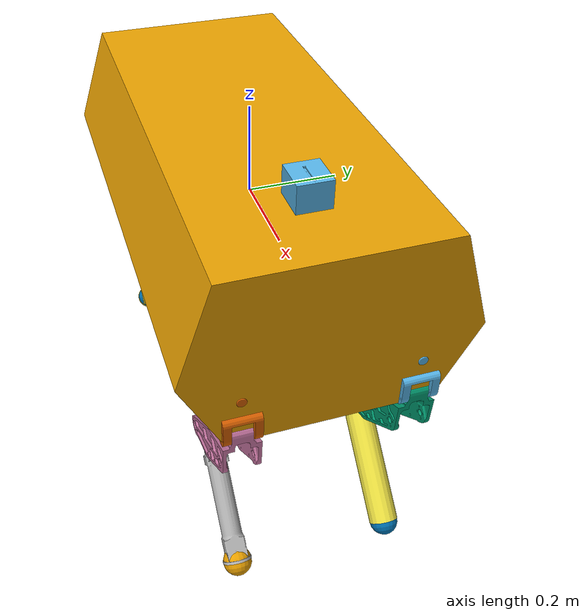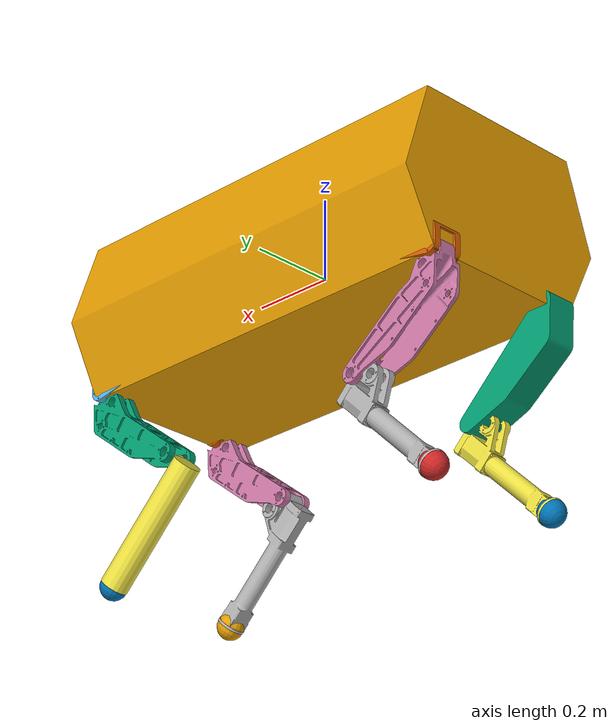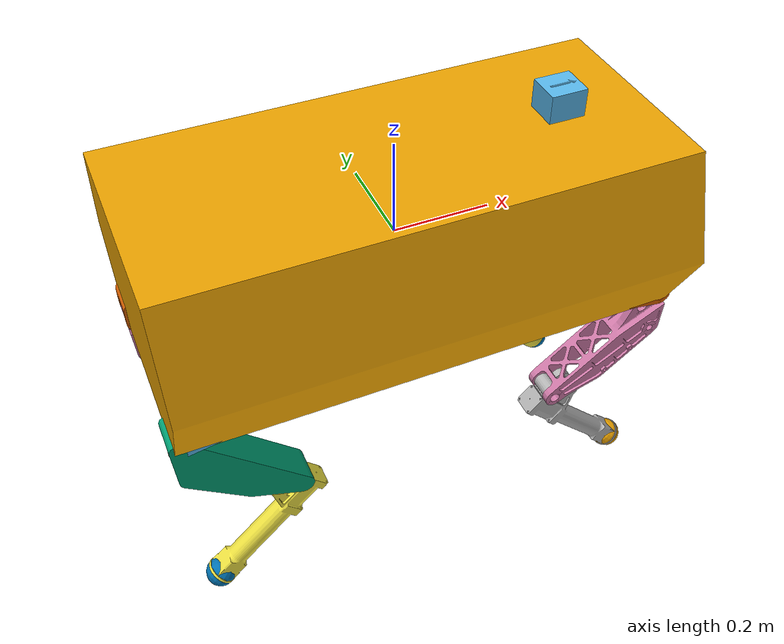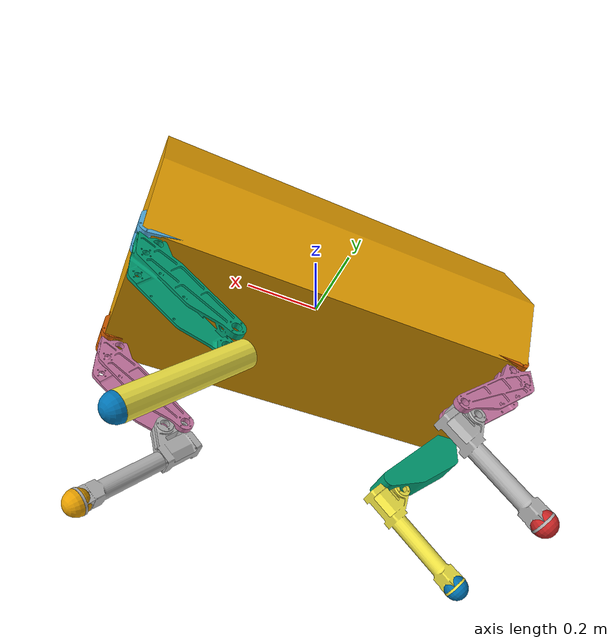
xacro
<?xml version="1.0"?>
<robot xmlns:xacro="http://www.ros.org/wiki/xacro" name="ehbot" >

<!--link and joint configuration-->

    <link name="torsor">
        <inertial>
            <origin xyz="-0.0006103852234427 0.0022287174896614 0.0439870877275536" rpy="0 0 0" />
            <mass   value="91.5850398109959" />
            <inertia
                ixx="3.21847046739878"
                ixy="0.000120950424453411"
                ixz="0.00371240385169517"
                iyy="8.77763016485756"
                iyz="0.00439125064440664"
                izz="9.57066327503177" />
        </inertial>
        <visual>
            <origin xyz="0 0 0" rpy="0 0 0" />
            <geometry>
            <mesh
              filename="package://ros_robotics/meshes/ehbot/visual/torsor.STL" />
            </geometry>
            <material name="ehbot_color"/>
        </visual>
        <collision>
            <origin xyz="0 0 0" rpy="0 0 0" />
            <geometry>
            <mesh
              filename="package://ros_robotics/meshes/ehbot/visual/torsor.STL" />
            </geometry>
        </collision>
    </link>

    <link name="link_lf_leg_thigh_roll">
        <inertial>
            <origin xyz="-0.0943741940341396 -0.00414241783850827 -0.0219639737576229" rpy="0 0 0" />
            <mass   value="4.50002341531795" />
            <inertia
                ixx="0.00982462171332848"
                ixy="-0.00105561145994919"
                ixz="-0.00234857174109823"
                iyy="0.0466176952693577"
                iyz="-0.000981599552383667"
                izz="0.0448674267828951" />
        </inertial>
        <visual>
            <origin xyz="0 0 0" rpy="0 0 0" />
            <geometry>
            <mesh
              filename="package://ros_robotics/meshes/ehbot/visual/link_lf_leg_thigh_roll.STL" />
            </geometry>
            <material name="ehbot_color"/>
        </visual>
        <collision>
            <origin xyz="0 0 0" rpy="0 0 0" />
            <geometry>
            <mesh
              filename="package://ros_robotics/meshes/ehbot/visual/link_lf_leg_thigh_roll.STL" />
            </geometry>
        </collision>
    </link>

    <joint name="joint_lf_leg_thigh_roll" type="revolute">
        <origin  xyz="0.50572 0.175 -0.0920000000000047" rpy="0 0 0" />
        <parent  link="torsor" />
        <child   link="link_lf_leg_thigh_roll" />
        <axis    xyz="1 0 0" />
        <limit
            upper="3.1415926"
            lower="-3.1415926"
            effort="400"
            velocity="10" />
        <dynamics damping="30.0" friction="0.0"/>
    </joint>

    <link name="link_lf_leg_thigh_pitch">
        <inertial>
            <origin xyz="-0.0148914459117169 -6.09817776831001E-08 -0.120580016468622" rpy="0 0 0" />
            <mass   value="4.49994336009306" />
            <inertia
                ixx="0.0466544119236218"
                ixy="-1.10743990761792E-09"
                ixz="-0.00158997011349249"
                iyy="0.0459784407608387"
                iyz="4.49682466619388E-08"
                izz="0.0052871361451635" />
        </inertial>
        <visual>
            <origin xyz="0 0 0" rpy="0 0 3.1415926" />
            <geometry>
            <mesh
              filename="package://ros_robotics/meshes/ehbot/visual/link_lf_leg_thigh_pitch.STL" />
            </geometry>
            <material name="ehbot_color"/>
        </visual>
        <collision>
            <origin xyz="0 0 0" rpy="0 0 3.1415926" />
            <geometry>
            <mesh
              filename="package://ros_robotics/meshes/ehbot/visual/link_lf_leg_thigh_pitch.STL" />
            </geometry>
        </collision>
    </link>

    <joint name="joint_lf_leg_thigh_pitch" type="revolute">
        <origin xyz="-0.00200286949996009 0 -0.0852383962390745" rpy="0 0.800364 0" />
        <parent link="link_lf_leg_thigh_roll" />
        <child  link="link_lf_leg_thigh_pitch" />
        <axis   xyz="0 1 0" />
        <limit
            upper="3.1415926"
            lower="-3.1415926"
            effort="400"
            velocity="10" />
        <dynamics damping="30.0" friction="0.0"/>
    </joint>

    <link name="link_lf_leg_knee_pitch">
        <inertial>
            <origin xyz="-0.0320829667993126 7.21137447534659E-08 -0.127304019469431" rpy="0 0 0" />
            <mass   value="2.99998769225701" />
            <inertia
                ixx="0.0353013691970067"
                ixy="-6.09294126991979E-09"
                ixz="0.00381057869029104"
                iyy="0.0367890799827388"
                iyz="2.35681115848283E-08"
                izz="0.00273372664629618" />
        </inertial>
        <visual>
            <origin xyz="0 0 0" rpy="0 0 0" />
            <geometry>
            <mesh
              filename="package://ros_robotics/meshes/ehbot/visual/link_lf_leg_knee_pitch.STL" />
            </geometry>
            <material name="ehbot_color"/>
        </visual>
        <collision>
            <origin xyz="0 0 0" rpy="0 0 0" />
            <geometry>
            <mesh
              filename="package://ros_robotics/meshes/ehbot/visual/link_lf_leg_knee_pitch.STL" />
            </geometry>
        </collision>
    </link>

    <joint name="joint_lf_leg_knee_pitch" type="revolute">
        <origin xyz="0 0 -0.31" rpy="0 0 0" />
        <parent link="link_lf_leg_thigh_pitch" />
        <child  link="link_lf_leg_knee_pitch" />
        <axis   xyz="0 1 0" />
        <limit
            upper="-0.05"
            lower="-3.1415926"
            effort="400"
            velocity="10" />
        <dynamics damping="30.0" friction="0.0"/>
    </joint>

    <link name="link_lf_leg_foot_fixed">
        <inertial>
            <origin xyz="3.07690428691387E-10 3.74000053149359E-10 -0.0185574911656095" rpy="0 0 0" />
            <mass   value="0.141299494484774" />
            <inertia
                ixx="5.92098764432421E-05"
                ixy="-9.95566799709695E-13"
                ixz="-1.24081219940374E-12"
                iyy="7.07534068503685E-05"
                iyz="2.73110438700764E-13"
                izz="9.57777436587173E-05" />
        </inertial>
        <visual>
            <origin xyz="0 0 0"  rpy="0 0 0" />
            <geometry>
                    <sphere radius="0.03175"/>
            </geometry>
            <material name="ehbot_color"/>
        </visual>
        <collision>
            <origin xyz="0 0 0" rpy="0 0 0" />
            <geometry>
                    <sphere radius="0.03175"/>
            </geometry>
        </collision>
    </link>

  <joint name="joint_lf_leg_foot_fixed" type="revolute">
    <origin xyz="-0.0454999999999999 0 -0.311" rpy="0 0 0" />
    <parent link="link_lf_leg_knee_pitch" />
    <child  link="link_lf_leg_foot_fixed" />
    <axis   xyz="0 1 0" />
    <limit
        upper="0.0"
        lower="3.14"
        effort="100"
        velocity="10" />
    <dynamics damping="30.0" friction="0.0"/>
  </joint>

  <link name="link_rf_leg_thigh_roll">
    <inertial>
      <origin xyz="-0.0943741978896471 -0.00414241793693815 -0.0219639729824721" rpy="0 0 0" />
      <mass   value="4.5000230676858" />
      <inertia
        ixx="0.00982462181328556"
        ixy="-0.00105561106736501"
        ixz="-0.00234857155524412"
        iyy="0.0466176940588004"
        iyz="-0.000981599593828068"
        izz="0.0448674261146214" />
    </inertial>
    <visual>
      <origin xyz="0 0 0" rpy="0 0 0" />
      <geometry>
        <mesh
          filename="package://ros_robotics/meshes/ehbot/visual/link_rf_leg_thigh_roll.STL" />
      </geometry>
      <material name="ehbot_color"/>
    </visual>
    <collision>
      <origin xyz="0 0 0" rpy="0 0 0" />
      <geometry>
        <mesh
          filename="package://ros_robotics/meshes/ehbot/visual/link_rf_leg_thigh_roll.STL" />
      </geometry>
    </collision>
  </link>

  <joint name="joint_rf_leg_thigh_roll" type="revolute">
    <origin xyz="0.50572 -0.175 -0.0920000000000047" rpy="0 0 0" />
    <parent link="torsor" />
    <child  link="link_rf_leg_thigh_roll" />
    <axis   xyz="1 0 0" />
  <limit
    upper="3.1415926"
    lower="-3.1415926"
    effort="400"
    velocity="10" />
    <dynamics damping="30.0" friction="0.0"/>
  </joint>

  <link name="link_rf_leg_thigh_pitch">
    <inertial>
      <origin xyz="-0.0148914501486359 -5.86718460482416E-08 -0.120580019886807" rpy="0 0 0" />
      <mass value="4.49994354769207" />
      <inertia
        ixx="0.046654411255362"
        ixy="-9.14884872055615E-10"
        ixz="-0.001589969766758"
        iyy="0.0459784397814242"
        iyz="4.58275775198651E-08"
        izz="0.0052871370562076" />
    </inertial>
    <visual>
      <origin xyz="0 0 0" rpy="0 0 3.1415926" />
      <geometry>
        <mesh
          filename="package://ros_robotics/meshes/ehbot/visual/link_rf_leg_thigh_pitch.STL" />
      </geometry>
      <material name="ehbot_color"/>
    </visual>
    <collision>
      <origin
        xyz="0 0 0"
        rpy="0 0 3.1415926" />
      <geometry>
        <mesh
          filename="package://ros_robotics/meshes/ehbot/visual/link_rf_leg_thigh_pitch.STL" />
      </geometry>
    </collision>
  </link>

    <joint name="joint_rf_leg_thigh_pitch" type="revolute">
        <origin xyz="-0.00200286949996009 0 -0.0852383962390745" rpy="0 0.800364 0" />
        <parent link="link_rf_leg_thigh_roll" />
        <child  link="link_rf_leg_thigh_pitch" />
        <axis   xyz="0 1 0" />
        <limit
            upper="3.1415926"
            lower="-3.1415926"
            effort="400"
            velocity="10" />
        <dynamics damping="30.0" friction="0.0"/>
    </joint>

    <link name="link_rf_leg_knee_pitch">
        <inertial>
            <origin xyz="-0.0320829692685936 5.86797160306851E-08 -0.127304105790515" rpy="0 0 0" />
            <mass value="2.99998384639397" />
            <inertia ixx="0.035301351372526"
                ixy="-6.10115530948123E-09"
                ixz="0.00381057800772144"
                iyy="0.0367890621305295"
                iyz="2.08352443066853E-08"
                izz="0.00273372592686392" />
        </inertial>
        <visual>
            <origin xyz="0 0 0" rpy="0 0 0" />
            <geometry>
            <mesh
              filename="package://ros_robotics/meshes/ehbot/visual/link_rf_leg_knee_pitch.STL" />
            </geometry>
            <material name="ehbot_color"/>
        </visual>
        <collision>
            <origin xyz="0 0 0" rpy="0 0 0" />
            <geometry>
            <mesh
              filename="package://ros_robotics/meshes/ehbot/visual/link_rf_leg_knee_pitch.STL" />
            </geometry>
        </collision>
    </link>

    <joint name="joint_rf_leg_knee_pitch" type="revolute">
        <origin xyz="0 0 -0.31" rpy="0 0 0" />
        <parent link="link_rf_leg_thigh_pitch" />
        <child  link="link_rf_leg_knee_pitch" />
        <axis   xyz="0 1 0" />
        <limit
            upper="-0.05"
            lower="-3.1415926"
            effort="400"
            velocity="10" />
        <dynamics damping="30.0" friction="0.0"/>
    </joint>

    <link  name="link_rf_leg_foot_fixed">
        <inertial>
            <origin xyz="3.07690428691387E-10 3.74000053149359E-10 -0.0185574911656095" rpy="0 0 0" />
            <mass value="0.141299494484774" />
            <inertia
                ixx="5.92098764432421E-05"
                ixy="-9.95566799709695E-13"
                ixz="-1.24081219940374E-12"
                iyy="7.07534068503685E-05"
                iyz="2.73110438700764E-13"
                izz="9.57777436587173E-05" />
        </inertial>

        <visual>
            <origin xyz="0 0 0" rpy="0 0 0" />
            <geometry>
                    <sphere radius="0.03175"/>
            </geometry>
            <material name="ehbot_color"/>
        </visual>
        <collision>
            <origin xyz="0 0 0" rpy="0 0 0" />
            <geometry>
                    <sphere radius="0.03175"/>
            </geometry>
        </collision>
    </link>

    <joint name="joint_rf_leg_foot_fixed" type="revolute">
        <origin xyz="-0.0454999999999997 0 -0.311" rpy="0 0 0" />
        <parent link="link_rf_leg_knee_pitch" />
        <child  link="link_rf_leg_foot_fixed" />
        <axis   xyz="0 1 0" />
        <limit
            upper="1"
            lower="-1"
            effort="100"
            velocity="10" />
        <dynamics damping="30.0" friction="0.0"/>
    </joint>

    <link name="link_rr_leg_thigh_roll">
        <inertial>
            <origin xyz="-0.094374196336685 -0.00414241793656139 -0.0219639730380668" rpy="0 0 0" />
            <mass   value="4.50002319742779" />
            <inertia
                ixx="0.00982462172543857"
                ixy="-0.00105561121449616"
                ixz="-0.00234857160884562"
                iyy="0.0466176944294046"
                iyz="-0.000981599590713499"
                izz="0.0448674263021047" />
        </inertial>
        <visual>
            <origin xyz="0 0 0" rpy="0 0 3.1415926" />
            <geometry>
            <mesh
               filename="package://ros_robotics/meshes/ehbot/visual/link_rr_leg_thigh_roll.STL" />
            </geometry>
            <material name="ehbot_color"/>
        </visual>
        <collision>
            <origin xyz="0 0 0"  rpy="0 0 3.1415926" />
            <geometry>
            <mesh
               filename="package://ros_robotics/meshes/ehbot/visual/link_rr_leg_thigh_roll.STL" />
            </geometry>
        </collision>
    </link>

    <joint  name="joint_rr_leg_thigh_roll" type="revolute">
        <origin xyz="-0.50572 -0.175 -0.092" rpy="0 0 0" />
        <parent link="torsor" />
        <child  link="link_rr_leg_thigh_roll" />
        <axis   xyz="1 0 0" />
        <limit
            upper="3.1415926"
            lower="-3.1415926"
            effort="400"
            velocity="10" />
        <dynamics damping="30.0" friction="0.0"/>
    </joint>

    <link name="link_rr_leg_thigh_pitch">
        <inertial>
            <origin xyz="-0.0148914502666558 -5.91915725878245E-08 -0.120580020194505" rpy="0 0 0" />
            <mass   value="4.4999435742762" />
            <inertia
                ixx="0.0466544116697395"
                ixy="-9.39666746655299E-10"
                ixz="-0.0015899698410406"
                iyy="0.0459784401767021"
                iyz="4.5541678418169E-08"
                izz="0.00528713706522366" />
        </inertial>
        <visual>
            <origin xyz="0 0 0" rpy="0 0 0" />
            <geometry>
            <mesh
              filename="package://ros_robotics/meshes/ehbot/visual/link_rr_leg_thigh_pitch.STL" />
            </geometry>
            <material name="ehbot_color"/>
        </visual>
        <collision>
            <origin xyz="0 0 0" rpy="0 0 0" />
            <geometry>
            <mesh
              filename="package://ros_robotics/meshes/ehbot/visual/link_rr_leg_thigh_pitch.STL" />
            </geometry>
        </collision>
    </link>

    <joint name="joint_rr_leg_thigh_pitch"  type="revolute">
        <origin xyz="-0.0020028694999602 0 -0.0852383962390742"  rpy="0 -0.800364 0" />
        <parent link="link_rr_leg_thigh_roll" />
        <child  link="link_rr_leg_thigh_pitch" />
        <axis   xyz="0 1 0" />
        <limit
            upper="3.1415926"
            lower="-3.1415926"
            effort="400"
            velocity="10" />
        <dynamics damping="30.0" friction="0.0"/>
    </joint>

    <link name="link_rr_leg_knee_pitch">
        <inertial>
            <origin xyz="-0.0320829686163923 7.22032576505605E-08 -0.127304021441792" rpy="0 0 0" />
            <mass   value="2.99998760663944" />
            <inertia
                ixx="0.0353013687923295"
                ixy="-6.1227552617674E-09"
                ixz="0.00381057825289451"
                iyy="0.0367890794730177"
                iyz="2.3577119714497E-08"
                izz="0.00273372651429908" />
        </inertial>
        <visual>
            <origin xyz="0 0 0" rpy="0 0 3.1415926" />
            <geometry>
            <mesh
               filename="package://ros_robotics/meshes/ehbot/visual/link_rr_leg_knee_pitch.STL" />
            </geometry>
            <material name="ehbot_color"/>
        </visual>
        <collision>
            <origin xyz="0 0 0" rpy="0 0 3.1415926" />
            <geometry>
            <mesh
               filename="package://ros_robotics/meshes/ehbot/visual/link_rr_leg_knee_pitch.STL" />
            </geometry>
        </collision>
    </link>

    <joint name="joint_rr_leg_knee_pitch" type="revolute">
        <origin xyz="0 0 -0.31" rpy="0 0 0" />
        <parent link="link_rr_leg_thigh_pitch" />
        <child  link="link_rr_leg_knee_pitch" />
        <axis   xyz="0 1 0" />
        <limit
            upper="3.1415926"
            lower="0.05"
            effort="400"
            velocity="10" />
        <dynamics damping="30.0" friction="0.0"/>
    </joint>

    <link name="link_rr_leg_foot_fixed">
        <inertial>
            <origin xyz="3.07690428691387E-10 3.74000053149359E-10 -0.0185574911656095" rpy="0 0 0" />
            <mass value="0.141299494484774" />
            <inertia
                ixx="5.92098764432421E-05"
                ixy="-9.95566799709695E-13"
                ixz="-1.24081219940374E-12"
                iyy="7.07534068503685E-05"
                iyz="2.73110438700764E-13"
                izz="9.57777436587173E-05" />
        </inertial>

        <visual>
            <origin xyz="0 0 0" rpy="0 0 0" />
            <geometry>
                    <sphere radius="0.03175"/>
            </geometry>
            <material name="ehbot_color"/>
        </visual>
        <collision>
            <origin xyz="0 0 0" rpy="0 0 0" />
            <geometry>
                  <sphere radius="0.03175"/>
            </geometry>
        </collision>
    </link>

    <joint name="joint_rr_leg_foot_fixed" type="revolute">
        <origin xyz="0.0454999999999999 0 -0.311" rpy="0 0 0" />
        <parent link="link_rr_leg_knee_pitch" />
        <child  link="link_rr_leg_foot_fixed" />
        <axis   xyz="0 1 0" />
        <limit
            upper="1"
            lower="-1"
            effort="100"
            velocity="10" />
        <dynamics damping="30.0" friction="0.0"/>
    </joint>

    <link name="link_lr_leg_thigh_roll">
        <inertial>
            <origin xyz="-0.0943741958016527 -0.00414241792051155 -0.0219639732208513" rpy="0 0 0" />
            <mass   value="4.50002325222667" />
            <inertia
                ixx="0.00982462172588083"
                ixy="-0.00105561127204788"
                ixz="-0.00234857164517063"
                iyy="0.0466176946585488"
                iyz="-0.000981599581122774"
                izz="0.0448674264419542" />
        </inertial>
        <visual>
            <origin xyz="0 0 0" rpy="0 0 3.1415926" />
            <geometry>
            <mesh
              filename="package://ros_robotics/meshes/ehbot/visual/link_lr_leg_thigh_roll.STL" />
            </geometry>
            <material name="ehbot_color"/>
        </visual>
        <collision>
            <origin xyz="0 0 0" rpy="0 0 3.1415926" />
            <geometry>
            <mesh
              filename="package://ros_robotics/meshes/ehbot/visual/link_lr_leg_thigh_roll.STL" />
            </geometry>
        </collision>
    </link>

    <joint name="joint_lr_leg_thigh_roll" type="revolute">
        <origin xyz="-0.50072 0.175 -0.0920000000000009" rpy="0 0 0" />
        <parent link="torsor" />
        <child  link="link_lr_leg_thigh_roll" />
        <axis   xyz="1 0 0" />
        <limit
            upper="3.1415926"
            lower="-3.1415926"
            effort="400"
            velocity="10" />
        <dynamics damping="30.0" friction="0.0"/>
    </joint>

    <link name="link_lr_leg_thigh_pitch">
        <inertial>
            <origin xyz="-0.0148914503907631 -5.93199005471945E-08 -0.120580020240539" rpy="0 0 0" />
            <mass value="4.49994359429806" />
            <inertia
                ixx="0.0466544117488234"
                ixy="-9.44320518480174E-10"
                ixz="-0.00158996986915856"
                iyy="0.0459784402421914"
                iyz="4.5427164262361E-08"
                izz="0.00528713708449312" />
        </inertial>
        <visual>
            <origin xyz="0 0 0" rpy="0 0 0" />
            <geometry>
            <mesh
              filename="package://ros_robotics/meshes/ehbot/visual/link_lr_leg_thigh_pitch.STL" />
            </geometry>
            <material name="ehbot_color"/>
        </visual>
        <collision>
            <origin xyz="0 0 0" rpy="0 0 0" />
            <geometry>
            <mesh
              filename="package://ros_robotics/meshes/ehbot/visual/link_lr_leg_thigh_pitch.STL" />
            </geometry>
        </collision>
    </link>

    <joint name="joint_lr_leg_thigh_pitch" type="revolute">
        <origin xyz="-0.0020028694999602 0 -0.0852383962390744" rpy="0 -0.800364 0" />
        <parent link="link_lr_leg_thigh_roll" />
        <child  link="link_lr_leg_thigh_pitch" />
        <axis   xyz="0 1 0" />
        <limit
            upper="3.1415926"
            lower="-3.1415926"
            effort="400"
            velocity="10" />
        <dynamics damping="30.0" friction="0.0"/>
    </joint>

    <link name="link_lr_leg_knee_pitch">
        <inertial>
            <origin xyz="-0.0320829686966787 7.18372203528661E-08 -0.127304021237652" rpy="0 0 0" />
            <mass   value="2.99998760550299" />
            <inertia
                ixx="0.0353013689169802"
                ixy="-6.11566253830804E-09"
                ixz="0.00381057822904622"
                iyy="0.0367890796154341"
                iyz="2.34905918143336E-08"
                izz="0.00273372651571912" />
        </inertial>
        <visual>
            <origin xyz="0 0 0" rpy="0 0 3.1415926" />
            <geometry>
            <mesh
              filename="package://ros_robotics/meshes/ehbot/visual/link_lr_leg_knee_pitch.STL" />
            </geometry>
            <material name="ehbot_color"/>
        </visual>
        <collision>
            <origin xyz="0 0 0" rpy="0 0 3.1415926" />
            <geometry>
            <mesh
              filename="package://ros_robotics/meshes/ehbot/visual/link_lr_leg_knee_pitch.STL" />
            </geometry>
        </collision>
    </link>

    <joint name="joint_lr_leg_knee_pitch" type="revolute">
        <origin xyz="0 0 -0.31" rpy="0 0 0" />
        <parent link="link_lr_leg_thigh_pitch" />
        <child  link="link_lr_leg_knee_pitch" />
        <axis   xyz="0 1 0" />
        <limit
            upper="3.1415926"
            lower="0.05"
            effort="400"
            velocity="10" />
        <dynamics damping="30.0" friction="0.0"/>
    </joint>

    <link name="link_lr_leg_foot_fixed">
        <inertial>
            <origin xyz="3.07690428691387E-10 3.74000053149359E-10 -0.0185574911656095" rpy="0 0 0" />
            <mass   value="0.141299494484774" />
            <inertia
                ixx="5.92098764432421E-05"
                ixy="-9.95566799709695E-13"
                ixz="-1.24081219940374E-12"
                iyy="7.07534068503685E-05"
                iyz="2.73110438700764E-13"
                izz="9.57777436587173E-05" />
        </inertial>
        <visual>
            <origin xyz="0 0 0" rpy="0 0 0" />
            <geometry>
                <sphere radius="0.03175"/>
            </geometry>
            <material name="red"/>
        </visual>
        <collision>
            <origin xyz="0 0 0" rpy="0 0 0" />
            <geometry>
                <sphere radius="0.03175"/>
            </geometry>
        </collision>
    </link>

    <joint name="joint_lr_leg_foot_fixed" type="revolute">
        <origin xyz="0.0455 0 -0.311" rpy="0 0 0" />
        <parent link="link_lr_leg_knee_pitch" />
        <child  link="link_lr_leg_foot_fixed" />
        <axis   xyz="0 1 0" />
        <limit
            upper="1"
            lower="-1"
            effort="100"
            velocity="10" />
        <dynamics damping="30.0" friction="0.0"/>
    </joint>

    <link name="link_torsor_imu">
        <inertial>
            <origin xyz="-2.89308406269395E-05 2.31980865073034E-10 -0.00658918556107091" rpy="0 0 0" />
            <mass   value="4.15611164377306E-05" />
            <inertia
                ixx="4.03076964082622E-08"
                ixy="6.69730564701523E-17"
                ixz="-4.47571283232843E-11"
                iyy="4.03777695620506E-08"
                iyz="2.7694006039881E-16"
                izz="3.88968027053409E-08" />
        </inertial>
        <visual>
        <origin xyz="0 0 0" rpy="0 0 0" />
            <geometry>
            <mesh
              filename="package://ros_robotics/meshes/ehbot/visual/link_torsor_imu.STL" />
            </geometry>
        <material name="ehbot_color"/>
        </visual>
        <collision>
            <origin xyz="0 0 0" rpy="0 0 0" />
            <geometry>
            <mesh
              filename="package://ros_robotics/meshes/ehbot/visual/link_torsor_imu.STL" />
            </geometry>
        </collision>
    </link>

    <joint name="joint_torsor_imu" type="fixed">
        <origin xyz="0.337098453809525 0.000149999999999734 0.207999999999999" rpy="0 0 0" />
        <parent link="torsor" />
        <child  link="link_torsor_imu" />
        <axis   xyz="0 0 0" />
    </joint>

</robot>
